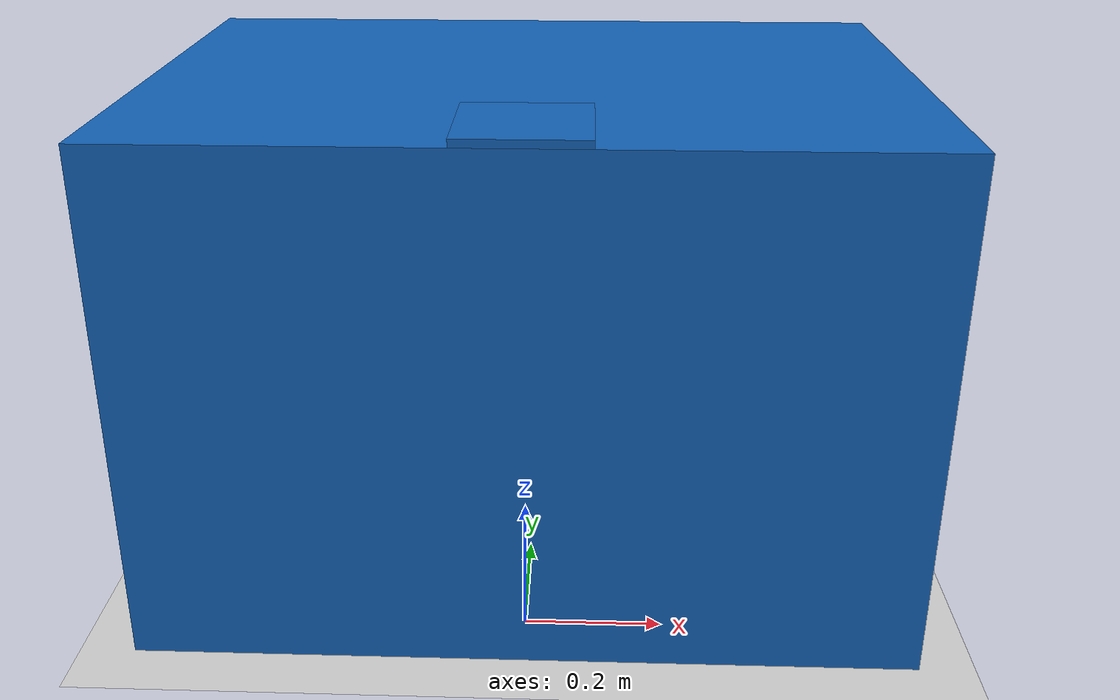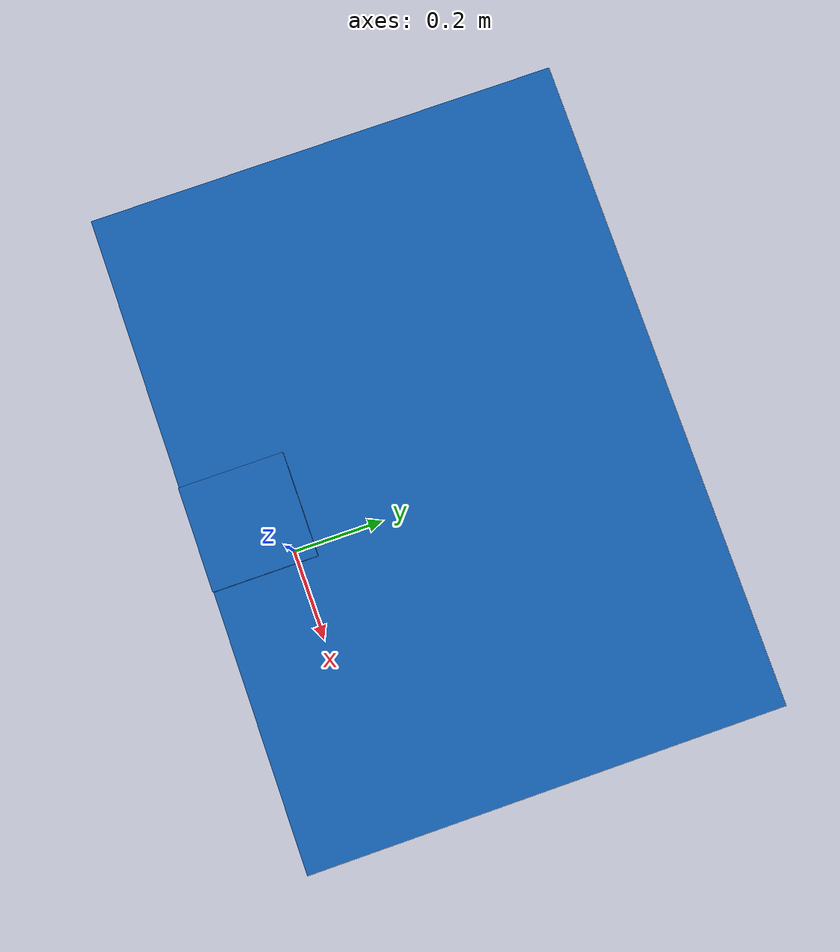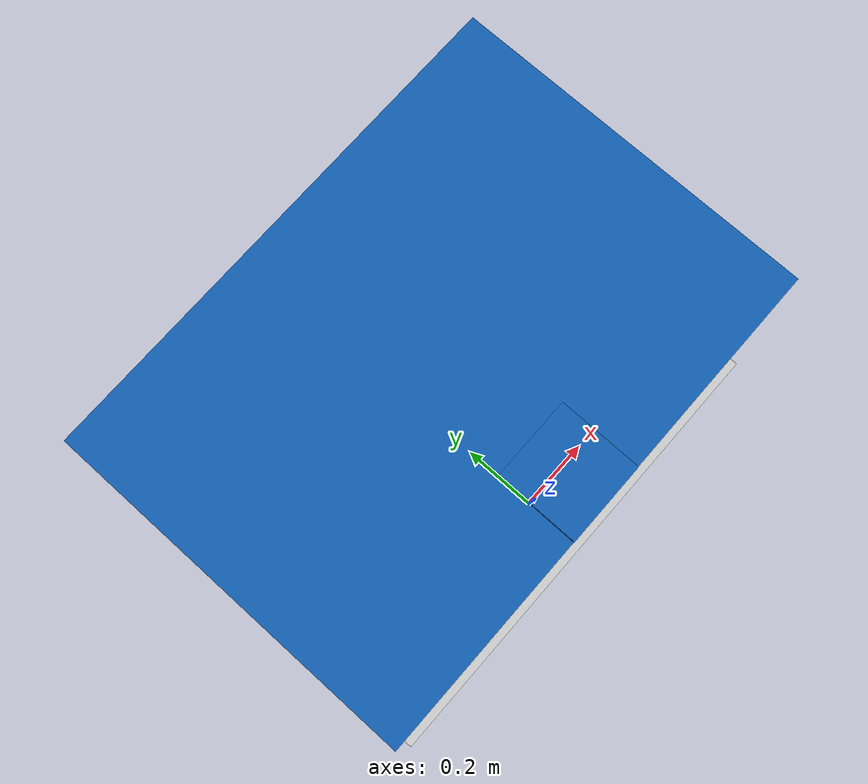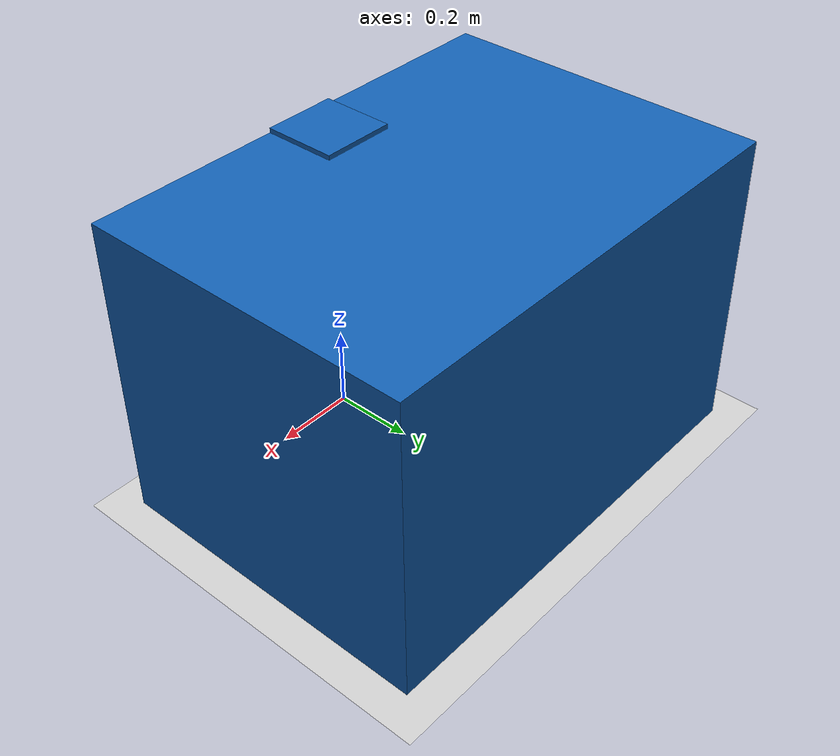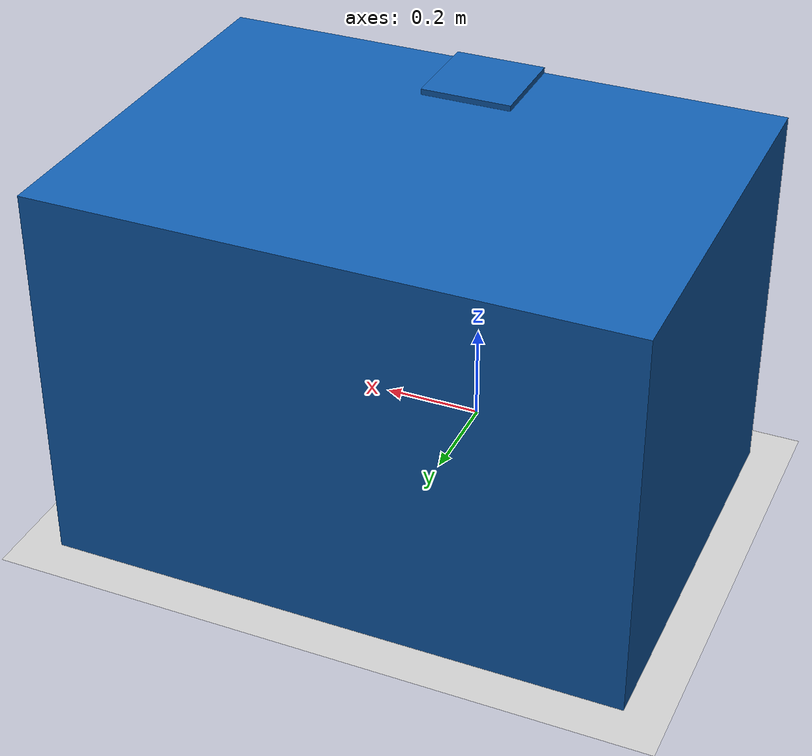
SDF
<?xml version="1.0" ?>
<!-- |    This document was autogenerated by xacro from enme480_ur3e_xacro.sdf         | -->
<!-- |    EDITING THIS FILE BY HAND IS NOT RECOMMENDED                                 | -->
<sdf version="1.6">
  <world name="enme480_sim">
    <physics type="ode">
      <max_step_size>0.003</max_step_size>
      <real_time_factor>1.0</real_time_factor>
      <real_time_update_rate>1000</real_time_update_rate>
      <gravity>0 0 -9.8</gravity>
    </physics>
    <!-- Plugin for simulating physics -->
    <plugin filename="ignition-gazebo-physics-system" name="gz::sim::systems::Physics">
  </plugin>
    <!-- Plugin for handling user commands -->
    <plugin filename="ignition-gazebo-user-commands-system" name="gz::sim::systems::UserCommands">
  </plugin>
    <!-- Plugin for broadcasting scene updates -->
    <plugin filename="ignition-gazebo-scene-broadcaster-system" name="gz::sim::systems::SceneBroadcaster">
  </plugin>
    <plugin filename="ignition-gazebo-contact-system" name="gz::sim::systems::Contact">
  </plugin>
    <!-- Plugin for sensor handling -->
    <plugin filename="ignition-gazebo-sensors-system" name="gz::sim::systems::Sensors">
      <render_engine>ogre</render_engine>
    </plugin>
    <light name="sun" type="directional">
      <cast_shadows>false</cast_shadows>
      <pose>0 0 10 0 0 0</pose>
      <diffuse>0.8 0.8 0.8 1</diffuse>
      <specular>0.2 0.2 0.2 1</specular>
      <attenuation>
        <range>1000</range>
        <constant>0.9</constant>
        <linear>0.01</linear>
        <quadratic>0.001</quadratic>
      </attenuation>
      <direction>-0.5 0.1 -0.9</direction>
    </light>
    <model name="ground_plane">
      <static>true</static>
      <link name="link">
        <collision name="collision">
          <geometry>
            <plane>
              <normal>0 0 1</normal>
              <size>100 100</size>
            </plane>
          </geometry>
        </collision>
        <visual name="visual">
          <geometry>
            <plane>
              <normal>0 0 1</normal>
              <size>100 100</size>
            </plane>
          </geometry>
          <material>
            <ambient>0.8 0.8 0.8 1</ambient>
            <diffuse>0.8 0.8 0.8 1</diffuse>
            <specular>0.8 0.8 0.8 1</specular>
          </material>
        </visual>
      </link>
    </model>
    <model name="arm_stand">
      <pose>0 0.31400000000000006 0.3775 0 0 0</pose>
      <static>true</static>
      <link name="stand_link">
        <collision name="stand_link_collision">
          <geometry>
            <box>
              <size>1.121 0.806 0.755</size>
              <!-- x, y, z dimensions in meters -->
            </box>
          </geometry>
        </collision>
        <visual name="stand_link_visual">
          <geometry>
            <box>
              <size>1.121 0.806 0.755</size>
              <!-- x, y, z dimensions in meters -->
            </box>
          </geometry>
          <material>
            <!-- RGBA values: red, green, blue, alpha -->
            <diffuse>0.071 0.373 0.694 1.0</diffuse>
            <specular>0.5 0.5 0.5 1</specular>
          </material>
        </visual>
      </link>
    </model>
    <model name="arm_holder">
      <pose>0 0 0.755 0 0 0</pose>
      <static>true</static>
      <link name="holder_link">
        <collision name="holder_link_collision">
          <geometry>
            <box>
              <size>0.178 0.178 0.0225</size>
              <!-- x, y, z dimensions in meters -->
            </box>
          </geometry>
        </collision>
        <visual name="holder_link_visual">
          <geometry>
            <box>
              <size>0.178 0.178 0.0225</size>
              <!-- x, y, z dimensions in meters -->
            </box>
          </geometry>
          <material>
            <!-- RGBA values: red, green, blue, alpha -->
            <diffuse>0.071 0.373 0.694 1.0</diffuse>
            <specular>0.5 0.5 0.5 1</specular>
          </material>
        </visual>
      </link>
    </model>
  </world>
</sdf>
